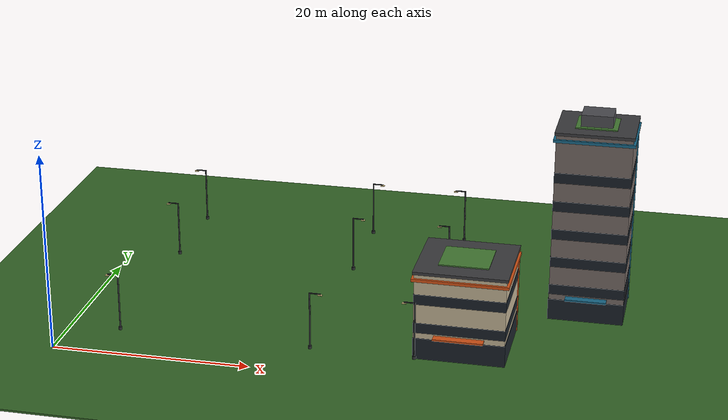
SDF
<sdf version="1.9">
 <world name="city">
  <model name="ground">
   <static>true</static>
   <link name="link">
    <collision name="collision">
     <pose>0 0 -0.1 0 0 0</pose>
     <geometry><box><size>220 220 0.2</size></box></geometry>
     <surface><friction><ode><mu>1.0</mu><mu2>1.0</mu2></ode></friction></surface>
    </collision>
    <visual name="visual">
     <pose>0 0 -0.1 0 0 0</pose>
     <geometry><box><size>220 220 0.2</size></box></geometry>
     <material>
      <ambient>0.17 0.33 0.13 1</ambient>
      <diffuse>0.21 0.41 0.16 1</diffuse>
      <specular>0.05 0.06 0.04 1</specular>
     </material>
    </visual>
   </link>
  </model>
  <model name="building_16">
   <static>true</static>
   <pose>39.5 9.5 0 0 0 0</pose>
   <link name="link">
    <collision name="collision">
     <pose>0 0 4.458 0 0 0</pose>
     <geometry><box><size>8.948 8.385 8.916</size></box></geometry>
    </collision>
    <visual name="body">
     <pose>0 0 4.458 0 0 0</pose>
     <geometry><box><size>8.948 8.385 8.916</size></box></geometry>
     <material>
      <ambient>0.78 0.72 0.6 1</ambient>
      <diffuse>0.78 0.72 0.6 1</diffuse>
      <specular>0.16 0.16 0.18 1</specular>
      <pbr><metal><roughness>0.62</roughness><metalness>0.08</metalness></metal></pbr>
     </material>
    </visual>
    <visual name="podium">
     <pose>0 0 1.1 0 0 0</pose>
     <geometry><box><size>9.048 8.485 2.2</size></box></geometry>
     <material>
      <ambient>0.07 0.09 0.11 1</ambient>
      <diffuse>0.1 0.13 0.16 1</diffuse>
      <specular>0.45 0.47 0.5 1</specular>
      <pbr><metal><roughness>0.22</roughness><metalness>0.4</metalness></metal></pbr>
     </material>
    </visual>
    <visual name="canopy">
     <pose>0 -4.593 2.55 0 0 0</pose>
     <geometry><box><size>4.921 0.90 0.18</size></box></geometry>
     <material>
      <ambient>0.85 0.33 0.09 1</ambient>
      <diffuse>0.85 0.33 0.09 1</diffuse>
      <specular>0.25 0.25 0.25 1</specular>
      <pbr><metal><roughness>0.45</roughness><metalness>0</metalness></metal></pbr>
     </material>
    </visual>
    <visual name="corner_column">
     <pose>4.514 4.233 4.458 0 0 0</pose>
     <geometry><box><size>0.16 0.16 8.916</size></box></geometry>
     <material>
      <ambient>0.85 0.33 0.09 1</ambient>
      <diffuse>0.85 0.33 0.09 1</diffuse>
      <specular>0.25 0.25 0.25 1</specular>
      <pbr><metal><roughness>0.45</roughness><metalness>0</metalness></metal></pbr>
     </material>
    </visual>
    <visual name="glass_0">
     <pose>0 0 3.3 0 0 0</pose>
     <geometry><box><size>9.008 8.445 1.05</size></box></geometry>
     <material>
      <ambient>0.075 0.095 0.115 1</ambient>
      <diffuse>0.1 0.13 0.16 1</diffuse>
      <specular>0.55 0.6 0.65 1</specular>
      <emissive>0.06 0.09 0.12 1</emissive>
      <pbr><metal><roughness>0.1</roughness><metalness>0.55</metalness></metal></pbr>
     </material>
    </visual>
    <visual name="glass_1">
     <pose>0 0 6.3 0 0 0</pose>
     <geometry><box><size>9.008 8.445 1.05</size></box></geometry>
     <material>
      <ambient>0.075 0.095 0.115 1</ambient>
      <diffuse>0.1 0.13 0.16 1</diffuse>
      <specular>0.55 0.6 0.65 1</specular>
      <emissive>0.06 0.09 0.12 1</emissive>
      <pbr><metal><roughness>0.1</roughness><metalness>0.55</metalness></metal></pbr>
     </material>
    </visual>
    <visual name="cornice">
     <pose>0 0 8.366 0 0 0</pose>
     <geometry><box><size>9.448 8.885 0.30</size></box></geometry>
     <material>
      <ambient>0.85 0.33 0.09 1</ambient>
      <diffuse>0.85 0.33 0.09 1</diffuse>
      <specular>0.2 0.2 0.2 1</specular>
      <pbr><metal><roughness>0.55</roughness><metalness>0</metalness></metal></pbr>
     </material>
    </visual>
    <visual name="roof">
     <pose>0 0 9.066 0 0 0</pose>
     <geometry><box><size>9.248 8.685 0.30</size></box></geometry>
     <material>
      <ambient>0.24 0.24 0.25 1</ambient>
      <diffuse>0.24 0.24 0.25 1</diffuse>
      <specular>0.18 0.18 0.18 1</specular>
      <pbr><metal><roughness>0.85</roughness><metalness>0</metalness></metal></pbr>
     </material>
    </visual>
    <visual name="roof_garden">
     <pose>0 0 9.256 0 0 0</pose>
     <geometry><box><size>4.921 4.612 0.16</size></box></geometry>
     <material>
      <ambient>0.24 0.44 0.18 1</ambient>
      <diffuse>0.28 0.5 0.21 1</diffuse>
      <specular>0.05 0.06 0.04 1</specular>
     </material>
    </visual>
   </link>
  </model>
  <model name="building_17">
   <static>true</static>
   <pose>50.5 20.5 0 0 0 0</pose>
   <link name="link">
    <collision name="collision">
     <pose>0 0 9.873 0 0 0</pose>
     <geometry><box><size>7.525 6.666 19.746</size></box></geometry>
    </collision>
    <visual name="body">
     <pose>0 0 9.873 0 0 0</pose>
     <geometry><box><size>7.525 6.666 19.746</size></box></geometry>
     <material>
      <ambient>0.47 0.42 0.4 1</ambient>
      <diffuse>0.47 0.42 0.4 1</diffuse>
      <specular>0.16 0.16 0.18 1</specular>
      <pbr><metal><roughness>0.62</roughness><metalness>0.08</metalness></metal></pbr>
     </material>
    </visual>
    <visual name="podium">
     <pose>0 0 1.1 0 0 0</pose>
     <geometry><box><size>7.625 6.766 2.2</size></box></geometry>
     <material>
      <ambient>0.07 0.09 0.11 1</ambient>
      <diffuse>0.1 0.13 0.16 1</diffuse>
      <specular>0.45 0.47 0.5 1</specular>
      <pbr><metal><roughness>0.22</roughness><metalness>0.4</metalness></metal></pbr>
     </material>
    </visual>
    <visual name="canopy">
     <pose>0 -3.733 2.55 0 0 0</pose>
     <geometry><box><size>4.138 0.90 0.18</size></box></geometry>
     <material>
      <ambient>0.1 0.42 0.55 1</ambient>
      <diffuse>0.1 0.42 0.55 1</diffuse>
      <specular>0.25 0.25 0.25 1</specular>
      <pbr><metal><roughness>0.45</roughness><metalness>0</metalness></metal></pbr>
     </material>
    </visual>
    <visual name="corner_column">
     <pose>3.802 3.373 9.873 0 0 0</pose>
     <geometry><box><size>0.16 0.16 19.746</size></box></geometry>
     <material>
      <ambient>0.1 0.42 0.55 1</ambient>
      <diffuse>0.1 0.42 0.55 1</diffuse>
      <specular>0.25 0.25 0.25 1</specular>
      <pbr><metal><roughness>0.45</roughness><metalness>0</metalness></metal></pbr>
     </material>
    </visual>
    <visual name="glass_0">
     <pose>0 0 3.3 0 0 0</pose>
     <geometry><box><size>7.585 6.726 1.05</size></box></geometry>
     <material>
      <ambient>0.075 0.095 0.115 1</ambient>
      <diffuse>0.1 0.13 0.16 1</diffuse>
      <specular>0.55 0.6 0.65 1</specular>
      <emissive>0.06 0.09 0.12 1</emissive>
      <pbr><metal><roughness>0.1</roughness><metalness>0.55</metalness></metal></pbr>
     </material>
    </visual>
    <visual name="glass_1">
     <pose>0 0 6.3 0 0 0</pose>
     <geometry><box><size>7.585 6.726 1.05</size></box></geometry>
     <material>
      <ambient>0.075 0.095 0.115 1</ambient>
      <diffuse>0.1 0.13 0.16 1</diffuse>
      <specular>0.55 0.6 0.65 1</specular>
      <emissive>0.06 0.09 0.12 1</emissive>
      <pbr><metal><roughness>0.1</roughness><metalness>0.55</metalness></metal></pbr>
     </material>
    </visual>
    <visual name="glass_2">
     <pose>0 0 9.3 0 0 0</pose>
     <geometry><box><size>7.585 6.726 1.05</size></box></geometry>
     <material>
      <ambient>0.075 0.095 0.115 1</ambient>
      <diffuse>0.1 0.13 0.16 1</diffuse>
      <specular>0.55 0.6 0.65 1</specular>
      <emissive>0.46 0.3 0.12 1</emissive>
      <pbr><metal><roughness>0.1</roughness><metalness>0.55</metalness></metal></pbr>
     </material>
    </visual>
    <visual name="glass_3">
     <pose>0 0 12.3 0 0 0</pose>
     <geometry><box><size>7.585 6.726 1.05</size></box></geometry>
     <material>
      <ambient>0.075 0.095 0.115 1</ambient>
      <diffuse>0.1 0.13 0.16 1</diffuse>
      <specular>0.55 0.6 0.65 1</specular>
      <emissive>0.46 0.3 0.12 1</emissive>
      <pbr><metal><roughness>0.1</roughness><metalness>0.55</metalness></metal></pbr>
     </material>
    </visual>
    <visual name="glass_4">
     <pose>0 0 15.3 0 0 0</pose>
     <geometry><box><size>7.585 6.726 1.05</size></box></geometry>
     <material>
      <ambient>0.075 0.095 0.115 1</ambient>
      <diffuse>0.1 0.13 0.16 1</diffuse>
      <specular>0.55 0.6 0.65 1</specular>
      <emissive>0.46 0.3 0.12 1</emissive>
      <pbr><metal><roughness>0.1</roughness><metalness>0.55</metalness></metal></pbr>
     </material>
    </visual>
    <visual name="cornice">
     <pose>0 0 19.196 0 0 0</pose>
     <geometry><box><size>8.025 7.166 0.30</size></box></geometry>
     <material>
      <ambient>0.1 0.42 0.55 1</ambient>
      <diffuse>0.1 0.42 0.55 1</diffuse>
      <specular>0.2 0.2 0.2 1</specular>
      <pbr><metal><roughness>0.55</roughness><metalness>0</metalness></metal></pbr>
     </material>
    </visual>
    <visual name="roof">
     <pose>0 0 19.896 0 0 0</pose>
     <geometry><box><size>7.825 6.966 0.30</size></box></geometry>
     <material>
      <ambient>0.24 0.24 0.25 1</ambient>
      <diffuse>0.24 0.24 0.25 1</diffuse>
      <specular>0.18 0.18 0.18 1</specular>
      <pbr><metal><roughness>0.85</roughness><metalness>0</metalness></metal></pbr>
     </material>
    </visual>
    <visual name="roof_garden">
     <pose>0 0 20.086 0 0 0</pose>
     <geometry><box><size>4.138 3.666 0.16</size></box></geometry>
     <material>
      <ambient>0.24 0.44 0.18 1</ambient>
      <diffuse>0.28 0.5 0.21 1</diffuse>
      <specular>0.05 0.06 0.04 1</specular>
     </material>
    </visual>
    <visual name="roof_unit">
     <pose>0 0 20.696 0 0 0</pose>
     <geometry><box><size>3.16 2.8 1.30</size></box></geometry>
     <material>
      <ambient>0.31 0.31 0.33 1</ambient>
      <diffuse>0.31 0.31 0.33 1</diffuse>
      <specular>0.18 0.18 0.18 1</specular>
      <pbr><metal><roughness>0.55</roughness><metalness>0.3</metalness></metal></pbr>
     </material>
    </visual>
   </link>
  </model>
  <model name="streetlight_19">
   <static>true</static>
   <pose>5.2 5.2 0 0 0 3.142</pose>
   <link name="link">
    <visual name="foundation">
     <pose>0 0 0.15 0 0 0</pose>
     <geometry><cylinder><radius>0.18</radius><length>0.3</length></cylinder></geometry>
     <material>
      <ambient>0.17 0.18 0.19 1</ambient>
      <diffuse>0.17 0.18 0.19 1</diffuse>
      <specular>0.3 0.3 0.32 1</specular>
      <pbr><metal><roughness>0.45</roughness><metalness>0.35</metalness></metal></pbr>
     </material>
    </visual>
    <visual name="pole">
     <pose>0 0 3.0 0 0 0</pose>
     <geometry><cylinder><radius>0.075</radius><length>6</length></cylinder></geometry>
     <material>
      <ambient>0.17 0.18 0.19 1</ambient>
      <diffuse>0.17 0.18 0.19 1</diffuse>
      <specular>0.3 0.3 0.32 1</specular>
      <pbr><metal><roughness>0.45</roughness><metalness>0.35</metalness></metal></pbr>
     </material>
    </visual>
    <visual name="arm">
     <pose>0.55 0 5.95 0 0 0</pose>
     <geometry><box><size>1.10 0.09 0.09</size></box></geometry>
     <material>
      <ambient>0.17 0.18 0.19 1</ambient>
      <diffuse>0.17 0.18 0.19 1</diffuse>
      <specular>0.3 0.3 0.32 1</specular>
      <pbr><metal><roughness>0.45</roughness><metalness>0.35</metalness></metal></pbr>
     </material>
    </visual>
    <visual name="head">
     <pose>1.05 0 5.83 0 0 0</pose>
     <geometry><box><size>0.42 0.20 0.10</size></box></geometry>
     <material>
      <ambient>1 0.9 0.62 1</ambient>
      <diffuse>1 0.9 0.62 1</diffuse>
      <specular>0.4 0.4 0.4 1</specular>
      <emissive>1 0.78 0.42 1</emissive>
     </material>
    </visual>
    <light type="point" name="lamp">
     <pose>1.05 0 5.70 0 0 0</pose>
     <diffuse>1.0 0.80 0.52 1</diffuse>
     <specular>0.5 0.5 0.5 1</specular>
     <attenuation>
      <range>18</range>
      <constant>1.0</constant>
      <linear>0.08</linear>
      <quadratic>0.015</quadratic>
     </attenuation>
     <cast_shadows>false</cast_shadows>
    </light>
   </link>
  </model>
  <model name="streetlight_22">
   <static>true</static>
   <pose>5.2 24.8 0 0 0 3.142</pose>
   <link name="link">
    <visual name="foundation">
     <pose>0 0 0.15 0 0 0</pose>
     <geometry><cylinder><radius>0.18</radius><length>0.3</length></cylinder></geometry>
     <material>
      <ambient>0.17 0.18 0.19 1</ambient>
      <diffuse>0.17 0.18 0.19 1</diffuse>
      <specular>0.3 0.3 0.32 1</specular>
      <pbr><metal><roughness>0.45</roughness><metalness>0.35</metalness></metal></pbr>
     </material>
    </visual>
    <visual name="pole">
     <pose>0 0 3.0 0 0 0</pose>
     <geometry><cylinder><radius>0.075</radius><length>6</length></cylinder></geometry>
     <material>
      <ambient>0.17 0.18 0.19 1</ambient>
      <diffuse>0.17 0.18 0.19 1</diffuse>
      <specular>0.3 0.3 0.32 1</specular>
      <pbr><metal><roughness>0.45</roughness><metalness>0.35</metalness></metal></pbr>
     </material>
    </visual>
    <visual name="arm">
     <pose>0.55 0 5.95 0 0 0</pose>
     <geometry><box><size>1.10 0.09 0.09</size></box></geometry>
     <material>
      <ambient>0.17 0.18 0.19 1</ambient>
      <diffuse>0.17 0.18 0.19 1</diffuse>
      <specular>0.3 0.3 0.32 1</specular>
      <pbr><metal><roughness>0.45</roughness><metalness>0.35</metalness></metal></pbr>
     </material>
    </visual>
    <visual name="head">
     <pose>1.05 0 5.83 0 0 0</pose>
     <geometry><box><size>0.42 0.20 0.10</size></box></geometry>
     <material>
      <ambient>1 0.9 0.62 1</ambient>
      <diffuse>1 0.9 0.62 1</diffuse>
      <specular>0.4 0.4 0.4 1</specular>
      <emissive>1 0.78 0.42 1</emissive>
     </material>
    </visual>
   </link>
  </model>
  <model name="streetlight_23">
   <static>true</static>
   <pose>5.2 35.2 0 0 0 3.142</pose>
   <link name="link">
    <visual name="foundation">
     <pose>0 0 0.15 0 0 0</pose>
     <geometry><cylinder><radius>0.18</radius><length>0.3</length></cylinder></geometry>
     <material>
      <ambient>0.17 0.18 0.19 1</ambient>
      <diffuse>0.17 0.18 0.19 1</diffuse>
      <specular>0.3 0.3 0.32 1</specular>
      <pbr><metal><roughness>0.45</roughness><metalness>0.35</metalness></metal></pbr>
     </material>
    </visual>
    <visual name="pole">
     <pose>0 0 3.0 0 0 0</pose>
     <geometry><cylinder><radius>0.075</radius><length>6</length></cylinder></geometry>
     <material>
      <ambient>0.17 0.18 0.19 1</ambient>
      <diffuse>0.17 0.18 0.19 1</diffuse>
      <specular>0.3 0.3 0.32 1</specular>
      <pbr><metal><roughness>0.45</roughness><metalness>0.35</metalness></metal></pbr>
     </material>
    </visual>
    <visual name="arm">
     <pose>0.55 0 5.95 0 0 0</pose>
     <geometry><box><size>1.10 0.09 0.09</size></box></geometry>
     <material>
      <ambient>0.17 0.18 0.19 1</ambient>
      <diffuse>0.17 0.18 0.19 1</diffuse>
      <specular>0.3 0.3 0.32 1</specular>
      <pbr><metal><roughness>0.45</roughness><metalness>0.35</metalness></metal></pbr>
     </material>
    </visual>
    <visual name="head">
     <pose>1.05 0 5.83 0 0 0</pose>
     <geometry><box><size>0.42 0.20 0.10</size></box></geometry>
     <material>
      <ambient>1 0.9 0.62 1</ambient>
      <diffuse>1 0.9 0.62 1</diffuse>
      <specular>0.4 0.4 0.4 1</specular>
      <emissive>1 0.78 0.42 1</emissive>
     </material>
    </visual>
   </link>
  </model>
  <model name="streetlight_29">
   <static>true</static>
   <pose>24.8 5.2 0 0 0 0</pose>
   <link name="link">
    <visual name="foundation">
     <pose>0 0 0.15 0 0 0</pose>
     <geometry><cylinder><radius>0.18</radius><length>0.3</length></cylinder></geometry>
     <material>
      <ambient>0.17 0.18 0.19 1</ambient>
      <diffuse>0.17 0.18 0.19 1</diffuse>
      <specular>0.3 0.3 0.32 1</specular>
      <pbr><metal><roughness>0.45</roughness><metalness>0.35</metalness></metal></pbr>
     </material>
    </visual>
    <visual name="pole">
     <pose>0 0 3.0 0 0 0</pose>
     <geometry><cylinder><radius>0.075</radius><length>6</length></cylinder></geometry>
     <material>
      <ambient>0.17 0.18 0.19 1</ambient>
      <diffuse>0.17 0.18 0.19 1</diffuse>
      <specular>0.3 0.3 0.32 1</specular>
      <pbr><metal><roughness>0.45</roughness><metalness>0.35</metalness></metal></pbr>
     </material>
    </visual>
    <visual name="arm">
     <pose>0.55 0 5.95 0 0 0</pose>
     <geometry><box><size>1.10 0.09 0.09</size></box></geometry>
     <material>
      <ambient>0.17 0.18 0.19 1</ambient>
      <diffuse>0.17 0.18 0.19 1</diffuse>
      <specular>0.3 0.3 0.32 1</specular>
      <pbr><metal><roughness>0.45</roughness><metalness>0.35</metalness></metal></pbr>
     </material>
    </visual>
    <visual name="head">
     <pose>1.05 0 5.83 0 0 0</pose>
     <geometry><box><size>0.42 0.20 0.10</size></box></geometry>
     <material>
      <ambient>1 0.9 0.62 1</ambient>
      <diffuse>1 0.9 0.62 1</diffuse>
      <specular>0.4 0.4 0.4 1</specular>
      <emissive>1 0.78 0.42 1</emissive>
     </material>
    </visual>
   </link>
  </model>
  <model name="streetlight_31">
   <static>true</static>
   <pose>35.2 5.2 0 0 0 3.142</pose>
   <link name="link">
    <visual name="foundation">
     <pose>0 0 0.15 0 0 0</pose>
     <geometry><cylinder><radius>0.18</radius><length>0.3</length></cylinder></geometry>
     <material>
      <ambient>0.17 0.18 0.19 1</ambient>
      <diffuse>0.17 0.18 0.19 1</diffuse>
      <specular>0.3 0.3 0.32 1</specular>
      <pbr><metal><roughness>0.45</roughness><metalness>0.35</metalness></metal></pbr>
     </material>
    </visual>
    <visual name="pole">
     <pose>0 0 3.0 0 0 0</pose>
     <geometry><cylinder><radius>0.075</radius><length>6</length></cylinder></geometry>
     <material>
      <ambient>0.17 0.18 0.19 1</ambient>
      <diffuse>0.17 0.18 0.19 1</diffuse>
      <specular>0.3 0.3 0.32 1</specular>
      <pbr><metal><roughness>0.45</roughness><metalness>0.35</metalness></metal></pbr>
     </material>
    </visual>
    <visual name="arm">
     <pose>0.55 0 5.95 0 0 0</pose>
     <geometry><box><size>1.10 0.09 0.09</size></box></geometry>
     <material>
      <ambient>0.17 0.18 0.19 1</ambient>
      <diffuse>0.17 0.18 0.19 1</diffuse>
      <specular>0.3 0.3 0.32 1</specular>
      <pbr><metal><roughness>0.45</roughness><metalness>0.35</metalness></metal></pbr>
     </material>
    </visual>
    <visual name="head">
     <pose>1.05 0 5.83 0 0 0</pose>
     <geometry><box><size>0.42 0.20 0.10</size></box></geometry>
     <material>
      <ambient>1 0.9 0.62 1</ambient>
      <diffuse>1 0.9 0.62 1</diffuse>
      <specular>0.4 0.4 0.4 1</specular>
      <emissive>1 0.78 0.42 1</emissive>
     </material>
    </visual>
   </link>
  </model>
  <model name="streetlight_32">
   <static>true</static>
   <pose>24.8 24.8 0 0 0 0</pose>
   <link name="link">
    <visual name="foundation">
     <pose>0 0 0.15 0 0 0</pose>
     <geometry><cylinder><radius>0.18</radius><length>0.3</length></cylinder></geometry>
     <material>
      <ambient>0.17 0.18 0.19 1</ambient>
      <diffuse>0.17 0.18 0.19 1</diffuse>
      <specular>0.3 0.3 0.32 1</specular>
      <pbr><metal><roughness>0.45</roughness><metalness>0.35</metalness></metal></pbr>
     </material>
    </visual>
    <visual name="pole">
     <pose>0 0 3.0 0 0 0</pose>
     <geometry><cylinder><radius>0.075</radius><length>6</length></cylinder></geometry>
     <material>
      <ambient>0.17 0.18 0.19 1</ambient>
      <diffuse>0.17 0.18 0.19 1</diffuse>
      <specular>0.3 0.3 0.32 1</specular>
      <pbr><metal><roughness>0.45</roughness><metalness>0.35</metalness></metal></pbr>
     </material>
    </visual>
    <visual name="arm">
     <pose>0.55 0 5.95 0 0 0</pose>
     <geometry><box><size>1.10 0.09 0.09</size></box></geometry>
     <material>
      <ambient>0.17 0.18 0.19 1</ambient>
      <diffuse>0.17 0.18 0.19 1</diffuse>
      <specular>0.3 0.3 0.32 1</specular>
      <pbr><metal><roughness>0.45</roughness><metalness>0.35</metalness></metal></pbr>
     </material>
    </visual>
    <visual name="head">
     <pose>1.05 0 5.83 0 0 0</pose>
     <geometry><box><size>0.42 0.20 0.10</size></box></geometry>
     <material>
      <ambient>1 0.9 0.62 1</ambient>
      <diffuse>1 0.9 0.62 1</diffuse>
      <specular>0.4 0.4 0.4 1</specular>
      <emissive>1 0.78 0.42 1</emissive>
     </material>
    </visual>
   </link>
  </model>
  <model name="streetlight_33">
   <static>true</static>
   <pose>24.8 35.2 0 0 0 0</pose>
   <link name="link">
    <visual name="foundation">
     <pose>0 0 0.15 0 0 0</pose>
     <geometry><cylinder><radius>0.18</radius><length>0.3</length></cylinder></geometry>
     <material>
      <ambient>0.17 0.18 0.19 1</ambient>
      <diffuse>0.17 0.18 0.19 1</diffuse>
      <specular>0.3 0.3 0.32 1</specular>
      <pbr><metal><roughness>0.45</roughness><metalness>0.35</metalness></metal></pbr>
     </material>
    </visual>
    <visual name="pole">
     <pose>0 0 3.0 0 0 0</pose>
     <geometry><cylinder><radius>0.075</radius><length>6</length></cylinder></geometry>
     <material>
      <ambient>0.17 0.18 0.19 1</ambient>
      <diffuse>0.17 0.18 0.19 1</diffuse>
      <specular>0.3 0.3 0.32 1</specular>
      <pbr><metal><roughness>0.45</roughness><metalness>0.35</metalness></metal></pbr>
     </material>
    </visual>
    <visual name="arm">
     <pose>0.55 0 5.95 0 0 0</pose>
     <geometry><box><size>1.10 0.09 0.09</size></box></geometry>
     <material>
      <ambient>0.17 0.18 0.19 1</ambient>
      <diffuse>0.17 0.18 0.19 1</diffuse>
      <specular>0.3 0.3 0.32 1</specular>
      <pbr><metal><roughness>0.45</roughness><metalness>0.35</metalness></metal></pbr>
     </material>
    </visual>
    <visual name="head">
     <pose>1.05 0 5.83 0 0 0</pose>
     <geometry><box><size>0.42 0.20 0.10</size></box></geometry>
     <material>
      <ambient>1 0.9 0.62 1</ambient>
      <diffuse>1 0.9 0.62 1</diffuse>
      <specular>0.4 0.4 0.4 1</specular>
      <emissive>1 0.78 0.42 1</emissive>
     </material>
    </visual>
   </link>
  </model>
  <model name="streetlight_34">
   <static>true</static>
   <pose>35.2 24.8 0 0 0 3.142</pose>
   <link name="link">
    <visual name="foundation">
     <pose>0 0 0.15 0 0 0</pose>
     <geometry><cylinder><radius>0.18</radius><length>0.3</length></cylinder></geometry>
     <material>
      <ambient>0.17 0.18 0.19 1</ambient>
      <diffuse>0.17 0.18 0.19 1</diffuse>
      <specular>0.3 0.3 0.32 1</specular>
      <pbr><metal><roughness>0.45</roughness><metalness>0.35</metalness></metal></pbr>
     </material>
    </visual>
    <visual name="pole">
     <pose>0 0 3.0 0 0 0</pose>
     <geometry><cylinder><radius>0.075</radius><length>6</length></cylinder></geometry>
     <material>
      <ambient>0.17 0.18 0.19 1</ambient>
      <diffuse>0.17 0.18 0.19 1</diffuse>
      <specular>0.3 0.3 0.32 1</specular>
      <pbr><metal><roughness>0.45</roughness><metalness>0.35</metalness></metal></pbr>
     </material>
    </visual>
    <visual name="arm">
     <pose>0.55 0 5.95 0 0 0</pose>
     <geometry><box><size>1.10 0.09 0.09</size></box></geometry>
     <material>
      <ambient>0.17 0.18 0.19 1</ambient>
      <diffuse>0.17 0.18 0.19 1</diffuse>
      <specular>0.3 0.3 0.32 1</specular>
      <pbr><metal><roughness>0.45</roughness><metalness>0.35</metalness></metal></pbr>
     </material>
    </visual>
    <visual name="head">
     <pose>1.05 0 5.83 0 0 0</pose>
     <geometry><box><size>0.42 0.20 0.10</size></box></geometry>
     <material>
      <ambient>1 0.9 0.62 1</ambient>
      <diffuse>1 0.9 0.62 1</diffuse>
      <specular>0.4 0.4 0.4 1</specular>
      <emissive>1 0.78 0.42 1</emissive>
     </material>
    </visual>
   </link>
  </model>
  <model name="streetlight_35">
   <static>true</static>
   <pose>35.2 35.2 0 0 0 3.142</pose>
   <link name="link">
    <visual name="foundation">
     <pose>0 0 0.15 0 0 0</pose>
     <geometry><cylinder><radius>0.18</radius><length>0.3</length></cylinder></geometry>
     <material>
      <ambient>0.17 0.18 0.19 1</ambient>
      <diffuse>0.17 0.18 0.19 1</diffuse>
      <specular>0.3 0.3 0.32 1</specular>
      <pbr><metal><roughness>0.45</roughness><metalness>0.35</metalness></metal></pbr>
     </material>
    </visual>
    <visual name="pole">
     <pose>0 0 3.0 0 0 0</pose>
     <geometry><cylinder><radius>0.075</radius><length>6</length></cylinder></geometry>
     <material>
      <ambient>0.17 0.18 0.19 1</ambient>
      <diffuse>0.17 0.18 0.19 1</diffuse>
      <specular>0.3 0.3 0.32 1</specular>
      <pbr><metal><roughness>0.45</roughness><metalness>0.35</metalness></metal></pbr>
     </material>
    </visual>
    <visual name="arm">
     <pose>0.55 0 5.95 0 0 0</pose>
     <geometry><box><size>1.10 0.09 0.09</size></box></geometry>
     <material>
      <ambient>0.17 0.18 0.19 1</ambient>
      <diffuse>0.17 0.18 0.19 1</diffuse>
      <specular>0.3 0.3 0.32 1</specular>
      <pbr><metal><roughness>0.45</roughness><metalness>0.35</metalness></metal></pbr>
     </material>
    </visual>
    <visual name="head">
     <pose>1.05 0 5.83 0 0 0</pose>
     <geometry><box><size>0.42 0.20 0.10</size></box></geometry>
     <material>
      <ambient>1 0.9 0.62 1</ambient>
      <diffuse>1 0.9 0.62 1</diffuse>
      <specular>0.4 0.4 0.4 1</specular>
      <emissive>1 0.78 0.42 1</emissive>
     </material>
    </visual>
   </link>
  </model>
 </world>
</sdf>
